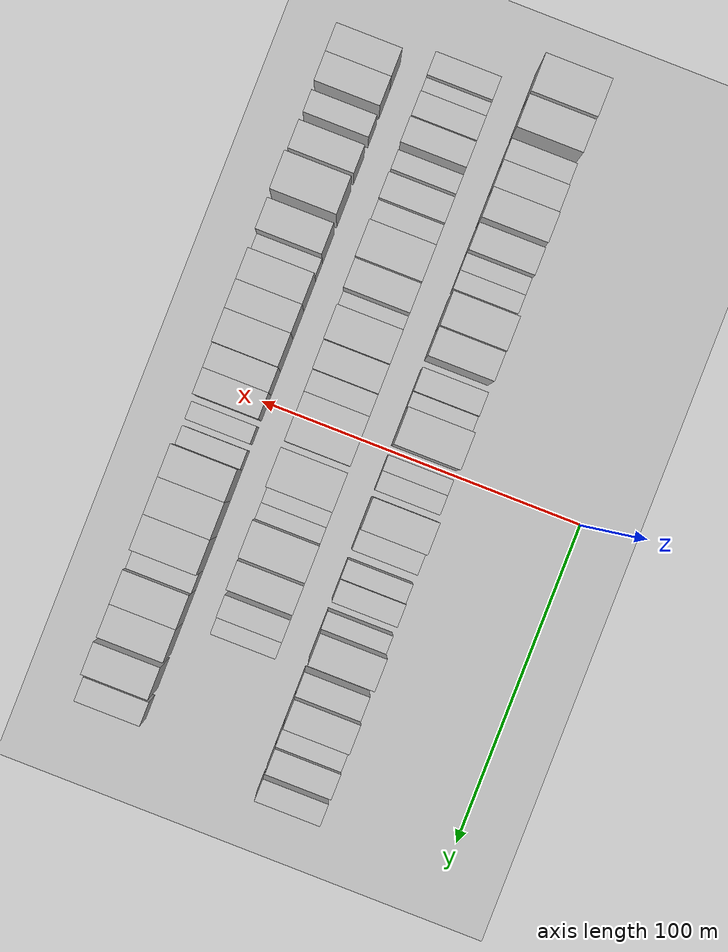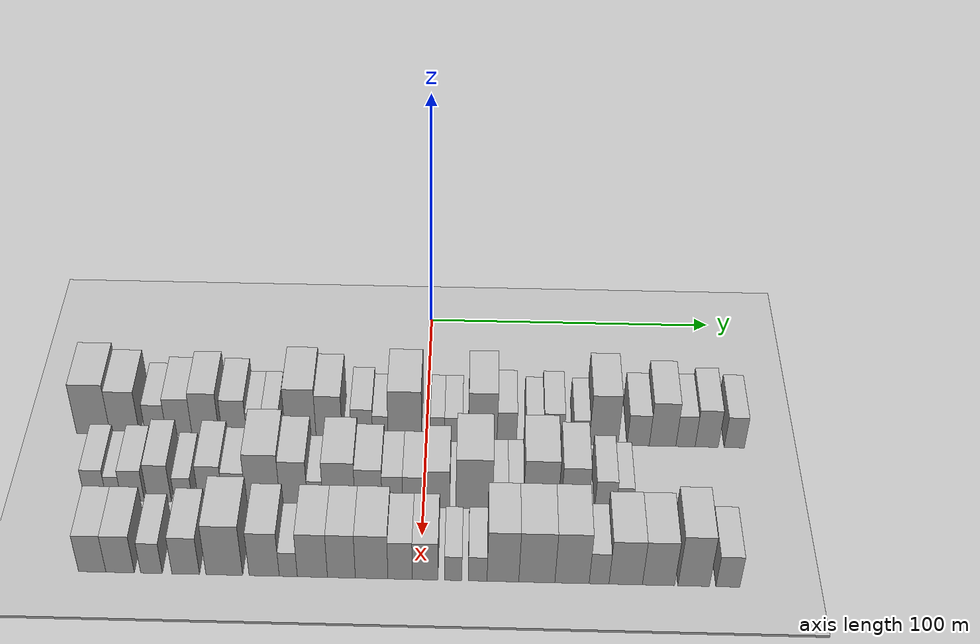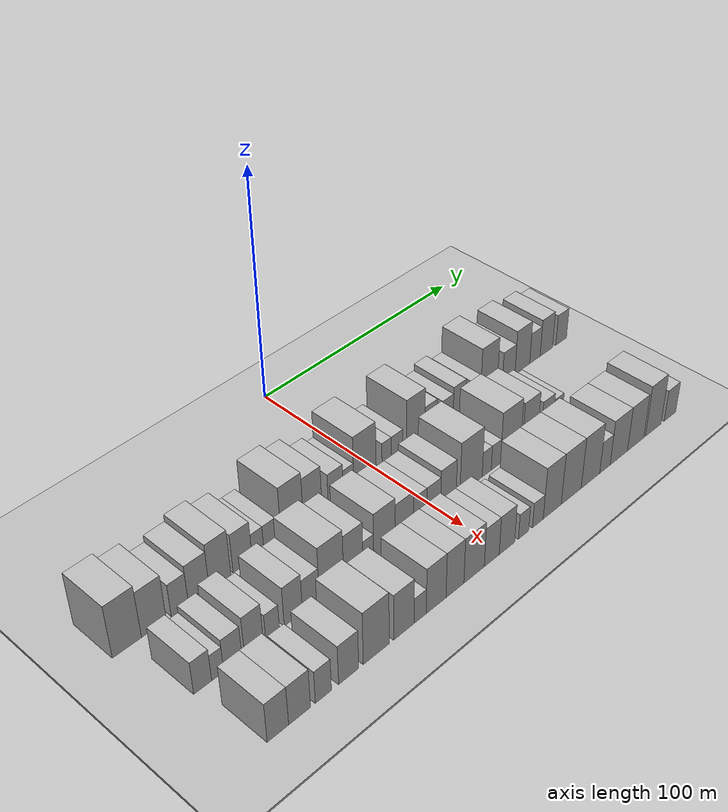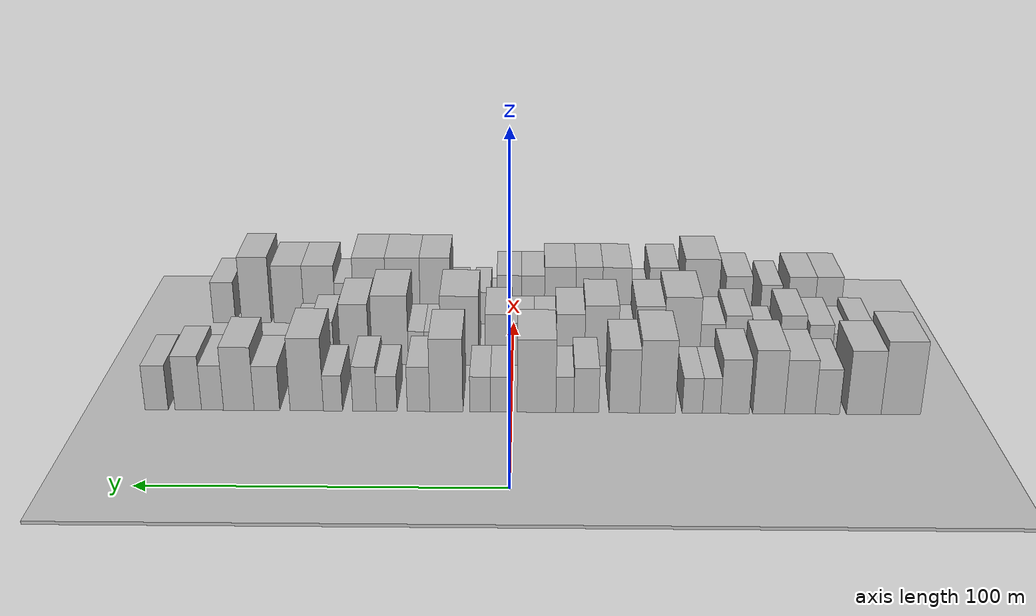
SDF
<sdf version="1.6">
 <world name="default">
  <include><name>ground_plane_1</name><uri>model://HANNAS_ground_plane</uri></include>
  <include>
   <name>ground_plane_2</name>
   <uri>model://HANNAS_ground_plane</uri>
   <pose>100 0 0  0 0 0</pose>
  </include>
  <model name="building_25">
   <static>1</static>
   <pose>50.0000 -112.6428 0 0.000000 0.000000 0.000000</pose>
   <link name="link">
    <pose>0 0 12.00 0 0 0</pose>
    <collision name="collision"><geometry><box><size>20.0000 11.4302 24.0000</size></box></geometry></collision>
    <visual name="visual">
     <cast_shadows>0</cast_shadows>
     <geometry><box><size>20.0000 11.4302 24.0000</size></box></geometry>
     <material>
      <script>
       <uri>model://HANNAS_wall/materials/scripts</uri>
       <uri>model://HANNAS_wall/materials/textures</uri>
       <name>vrc/HANNAS_wall</name>
      </script>
     </material>
    </visual>
   </link>
  </model>
  <model name="building_26">
   <static>1</static>
   <pose>50.0000 -101.9458 0 0.000000 0.000000 0.000000</pose>
   <link name="link">
    <pose>0 0 10.50 0 0 0</pose>
    <collision name="collision"><geometry><box><size>20.0000 9.9638 21.0000</size></box></geometry></collision>
    <visual name="visual">
     <cast_shadows>0</cast_shadows>
     <geometry><box><size>20.0000 9.9638 21.0000</size></box></geometry>
     <material>
      <script>
       <uri>model://HANNAS_wall/materials/scripts</uri>
       <uri>model://HANNAS_wall/materials/textures</uri>
       <name>vrc/HANNAS_wall</name>
      </script>
     </material>
    </visual>
   </link>
  </model>
  <model name="building_27">
   <static>1</static>
   <pose>50.0000 -91.4111 0 0.000000 0.000000 0.000000</pose>
   <link name="link">
    <pose>0 0 7.50 0 0 0</pose>
    <collision name="collision"><geometry><box><size>20.0000 7.1054 15.0000</size></box></geometry></collision>
    <visual name="visual">
     <cast_shadows>0</cast_shadows>
     <geometry><box><size>20.0000 7.1054 15.0000</size></box></geometry>
     <material>
      <script>
       <uri>model://HANNAS_wall/materials/scripts</uri>
       <uri>model://HANNAS_wall/materials/textures</uri>
       <name>vrc/HANNAS_wall</name>
      </script>
     </material>
    </visual>
   </link>
  </model>
  <model name="building_28">
   <static>1</static>
   <pose>50.0000 -83.4727 0 0.000000 0.000000 0.000000</pose>
   <link name="link">
    <pose>0 0 9.00 0 0 0</pose>
    <collision name="collision"><geometry><box><size>20.0000 8.7715 18.0000</size></box></geometry></collision>
    <visual name="visual">
     <cast_shadows>0</cast_shadows>
     <geometry><box><size>20.0000 8.7715 18.0000</size></box></geometry>
     <material>
      <script>
       <uri>model://HANNAS_wall/materials/scripts</uri>
       <uri>model://HANNAS_wall/materials/textures</uri>
       <name>vrc/HANNAS_wall</name>
      </script>
     </material>
    </visual>
   </link>
  </model>
  <model name="building_29">
   <static>1</static>
   <pose>50.0000 -74.4863 0 0.000000 0.000000 0.000000</pose>
   <link name="link">
    <pose>0 0 10.50 0 0 0</pose>
    <collision name="collision"><geometry><box><size>20.0000 9.2012 21.0000</size></box></geometry></collision>
    <visual name="visual">
     <cast_shadows>0</cast_shadows>
     <geometry><box><size>20.0000 9.2012 21.0000</size></box></geometry>
     <material>
      <script>
       <uri>model://HANNAS_wall/materials/scripts</uri>
       <uri>model://HANNAS_wall/materials/textures</uri>
       <name>vrc/HANNAS_wall</name>
      </script>
     </material>
    </visual>
   </link>
  </model>
  <model name="building_30">
   <static>1</static>
   <pose>50.0000 -64.7141 0 0.000000 0.000000 0.000000</pose>
   <link name="link">
    <pose>0 0 9.00 0 0 0</pose>
    <collision name="collision"><geometry><box><size>20.0000 8.3432 18.0000</size></box></geometry></collision>
    <visual name="visual">
     <cast_shadows>0</cast_shadows>
     <geometry><box><size>20.0000 8.3432 18.0000</size></box></geometry>
     <material>
      <script>
       <uri>model://HANNAS_wall/materials/scripts</uri>
       <uri>model://HANNAS_wall/materials/textures</uri>
       <name>vrc/HANNAS_wall</name>
      </script>
     </material>
    </visual>
   </link>
  </model>
  <model name="building_31">
   <static>1</static>
   <pose>50.0000 -57.9060 0 0.000000 0.000000 0.000000</pose>
   <link name="link">
    <pose>0 0 6.00 0 0 0</pose>
    <collision name="collision"><geometry><box><size>20.0000 5.2730 12.0000</size></box></geometry></collision>
    <visual name="visual">
     <cast_shadows>0</cast_shadows>
     <geometry><box><size>20.0000 5.2730 12.0000</size></box></geometry>
     <material>
      <script>
       <uri>model://HANNAS_wall/materials/scripts</uri>
       <uri>model://HANNAS_wall/materials/textures</uri>
       <name>vrc/HANNAS_wall</name>
      </script>
     </material>
    </visual>
   </link>
  </model>
  <model name="building_32">
   <static>1</static>
   <pose>50.0000 -52.3699 0 0.000000 0.000000 0.000000</pose>
   <link name="link">
    <pose>0 0 6.00 0 0 0</pose>
    <collision name="collision"><geometry><box><size>20.0000 5.7993 12.0000</size></box></geometry></collision>
    <visual name="visual">
     <cast_shadows>0</cast_shadows>
     <geometry><box><size>20.0000 5.7993 12.0000</size></box></geometry>
     <material>
      <script>
       <uri>model://HANNAS_wall/materials/scripts</uri>
       <uri>model://HANNAS_wall/materials/textures</uri>
       <name>vrc/HANNAS_wall</name>
      </script>
     </material>
    </visual>
   </link>
  </model>
  <model name="building_33">
   <static>1</static>
   <pose>50.0000 -42.2846 0 0.000000 0.000000 0.000000</pose>
   <link name="link">
    <pose>0 0 12.00 0 0 0</pose>
    <collision name="collision"><geometry><box><size>20.0000 10.3713 24.0000</size></box></geometry></collision>
    <visual name="visual">
     <cast_shadows>0</cast_shadows>
     <geometry><box><size>20.0000 10.3713 24.0000</size></box></geometry>
     <material>
      <script>
       <uri>model://HANNAS_wall/materials/scripts</uri>
       <uri>model://HANNAS_wall/materials/textures</uri>
       <name>vrc/HANNAS_wall</name>
      </script>
     </material>
    </visual>
   </link>
  </model>
  <model name="building_34">
   <static>1</static>
   <pose>50.0000 -32.6914 0 0.000000 0.000000 0.000000</pose>
   <link name="link">
    <pose>0 0 10.50 0 0 0</pose>
    <collision name="collision"><geometry><box><size>20.0000 8.8151 21.0000</size></box></geometry></collision>
    <visual name="visual">
     <cast_shadows>0</cast_shadows>
     <geometry><box><size>20.0000 8.8151 21.0000</size></box></geometry>
     <material>
      <script>
       <uri>model://HANNAS_wall/materials/scripts</uri>
       <uri>model://HANNAS_wall/materials/textures</uri>
       <name>vrc/HANNAS_wall</name>
      </script>
     </material>
    </visual>
   </link>
  </model>
  <model name="building_35">
   <static>1</static>
   <pose>50.0000 -21.6587 0 0.000000 0.000000 0.000000</pose>
   <link name="link">
    <pose>0 0 7.50 0 0 0</pose>
    <collision name="collision"><geometry><box><size>20.0000 7.2503 15.0000</size></box></geometry></collision>
    <visual name="visual">
     <cast_shadows>0</cast_shadows>
     <geometry><box><size>20.0000 7.2503 15.0000</size></box></geometry>
     <material>
      <script>
       <uri>model://HANNAS_wall/materials/scripts</uri>
       <uri>model://HANNAS_wall/materials/textures</uri>
       <name>vrc/HANNAS_wall</name>
      </script>
     </material>
    </visual>
   </link>
  </model>
  <model name="building_36">
   <static>1</static>
   <pose>50.0000 -15.4284 0 0.000000 0.000000 0.000000</pose>
   <link name="link">
    <pose>0 0 6.00 0 0 0</pose>
    <collision name="collision"><geometry><box><size>20.0000 5.2104 12.0000</size></box></geometry></collision>
    <visual name="visual">
     <cast_shadows>0</cast_shadows>
     <geometry><box><size>20.0000 5.2104 12.0000</size></box></geometry>
     <material>
      <script>
       <uri>model://HANNAS_wall/materials/scripts</uri>
       <uri>model://HANNAS_wall/materials/textures</uri>
       <name>vrc/HANNAS_wall</name>
      </script>
     </material>
    </visual>
   </link>
  </model>
  <model name="building_37">
   <static>1</static>
   <pose>50.0000 -7.2156 0 0.000000 0.000000 0.000000</pose>
   <link name="link">
    <pose>0 0 12.00 0 0 0</pose>
    <collision name="collision"><geometry><box><size>20.0000 11.2152 24.0000</size></box></geometry></collision>
    <visual name="visual">
     <cast_shadows>0</cast_shadows>
     <geometry><box><size>20.0000 11.2152 24.0000</size></box></geometry>
     <material>
      <script>
       <uri>model://HANNAS_wall/materials/scripts</uri>
       <uri>model://HANNAS_wall/materials/textures</uri>
       <name>vrc/HANNAS_wall</name>
      </script>
     </material>
    </visual>
   </link>
  </model>
  <model name="building_38">
   <static>1</static>
   <pose>50.0000 3.7937 0 0.000000 0.000000 0.000000</pose>
   <link name="link">
    <pose>0 0 6.00 0 0 0</pose>
    <collision name="collision"><geometry><box><size>20.0000 4.8033 12.0000</size></box></geometry></collision>
    <visual name="visual">
     <cast_shadows>0</cast_shadows>
     <geometry><box><size>20.0000 4.8033 12.0000</size></box></geometry>
     <material>
      <script>
       <uri>model://HANNAS_wall/materials/scripts</uri>
       <uri>model://HANNAS_wall/materials/textures</uri>
       <name>vrc/HANNAS_wall</name>
      </script>
     </material>
    </visual>
   </link>
  </model>
  <model name="building_39">
   <static>1</static>
   <pose>50.0000 9.1888 0 0.000000 0.000000 0.000000</pose>
   <link name="link">
    <pose>0 0 6.00 0 0 0</pose>
    <collision name="collision"><geometry><box><size>20.0000 5.9868 12.0000</size></box></geometry></collision>
    <visual name="visual">
     <cast_shadows>0</cast_shadows>
     <geometry><box><size>20.0000 5.9868 12.0000</size></box></geometry>
     <material>
      <script>
       <uri>model://HANNAS_wall/materials/scripts</uri>
       <uri>model://HANNAS_wall/materials/textures</uri>
       <name>vrc/HANNAS_wall</name>
      </script>
     </material>
    </visual>
   </link>
  </model>
  <model name="building_40">
   <static>1</static>
   <pose>50.0000 18.9999 0 0.000000 0.000000 0.000000</pose>
   <link name="link">
    <pose>0 0 12.00 0 0 0</pose>
    <collision name="collision"><geometry><box><size>20.0000 9.6355 24.0000</size></box></geometry></collision>
    <visual name="visual">
     <cast_shadows>0</cast_shadows>
     <geometry><box><size>20.0000 9.6355 24.0000</size></box></geometry>
     <material>
      <script>
       <uri>model://HANNAS_wall/materials/scripts</uri>
       <uri>model://HANNAS_wall/materials/textures</uri>
       <name>vrc/HANNAS_wall</name>
      </script>
     </material>
    </visual>
   </link>
  </model>
  <model name="building_41">
   <static>1</static>
   <pose>50.0000 27.0947 0 0.000000 0.000000 0.000000</pose>
   <link name="link">
    <pose>0 0 7.50 0 0 0</pose>
    <collision name="collision"><geometry><box><size>20.0000 6.5542 15.0000</size></box></geometry></collision>
    <visual name="visual">
     <cast_shadows>0</cast_shadows>
     <geometry><box><size>20.0000 6.5542 15.0000</size></box></geometry>
     <material>
      <script>
       <uri>model://HANNAS_wall/materials/scripts</uri>
       <uri>model://HANNAS_wall/materials/textures</uri>
       <name>vrc/HANNAS_wall</name>
      </script>
     </material>
    </visual>
   </link>
  </model>
  <model name="building_42">
   <static>1</static>
   <pose>50.0000 36.3470 0 0.000000 0.000000 0.000000</pose>
   <link name="link">
    <pose>0 0 6.00 0 0 0</pose>
    <collision name="collision"><geometry><box><size>20.0000 5.9503 12.0000</size></box></geometry></collision>
    <visual name="visual">
     <cast_shadows>0</cast_shadows>
     <geometry><box><size>20.0000 5.9503 12.0000</size></box></geometry>
     <material>
      <script>
       <uri>model://HANNAS_wall/materials/scripts</uri>
       <uri>model://HANNAS_wall/materials/textures</uri>
       <name>vrc/HANNAS_wall</name>
      </script>
     </material>
    </visual>
   </link>
  </model>
  <model name="building_43">
   <static>1</static>
   <pose>50.0000 42.7750 0 0.000000 0.000000 0.000000</pose>
   <link name="link">
    <pose>0 0 7.50 0 0 0</pose>
    <collision name="collision"><geometry><box><size>20.0000 6.9056 15.0000</size></box></geometry></collision>
    <visual name="visual">
     <cast_shadows>0</cast_shadows>
     <geometry><box><size>20.0000 6.9056 15.0000</size></box></geometry>
     <material>
      <script>
       <uri>model://HANNAS_wall/materials/scripts</uri>
       <uri>model://HANNAS_wall/materials/textures</uri>
       <name>vrc/HANNAS_wall</name>
      </script>
     </material>
    </visual>
   </link>
  </model>
  <model name="building_44">
   <static>1</static>
   <pose>50.0000 51.9969 0 0.000000 0.000000 0.000000</pose>
   <link name="link">
    <pose>0 0 6.00 0 0 0</pose>
    <collision name="collision"><geometry><box><size>20.0000 5.5381 12.0000</size></box></geometry></collision>
    <visual name="visual">
     <cast_shadows>0</cast_shadows>
     <geometry><box><size>20.0000 5.5381 12.0000</size></box></geometry>
     <material>
      <script>
       <uri>model://HANNAS_wall/materials/scripts</uri>
       <uri>model://HANNAS_wall/materials/textures</uri>
       <name>vrc/HANNAS_wall</name>
      </script>
     </material>
    </visual>
   </link>
  </model>
  <model name="building_45">
   <static>1</static>
   <pose>50.0000 59.6336 0 0.000000 0.000000 0.000000</pose>
   <link name="link">
    <pose>0 0 12.00 0 0 0</pose>
    <collision name="collision"><geometry><box><size>20.0000 9.7353 24.0000</size></box></geometry></collision>
    <visual name="visual">
     <cast_shadows>0</cast_shadows>
     <geometry><box><size>20.0000 9.7353 24.0000</size></box></geometry>
     <material>
      <script>
       <uri>model://HANNAS_wall/materials/scripts</uri>
       <uri>model://HANNAS_wall/materials/textures</uri>
       <name>vrc/HANNAS_wall</name>
      </script>
     </material>
    </visual>
   </link>
  </model>
  <model name="building_46">
   <static>1</static>
   <pose>50.0000 71.2349 0 0.000000 0.000000 0.000000</pose>
   <link name="link">
    <pose>0 0 7.50 0 0 0</pose>
    <collision name="collision"><geometry><box><size>20.0000 7.4674 15.0000</size></box></geometry></collision>
    <visual name="visual">
     <cast_shadows>0</cast_shadows>
     <geometry><box><size>20.0000 7.4674 15.0000</size></box></geometry>
     <material>
      <script>
       <uri>model://HANNAS_wall/materials/scripts</uri>
       <uri>model://HANNAS_wall/materials/textures</uri>
       <name>vrc/HANNAS_wall</name>
      </script>
     </material>
    </visual>
   </link>
  </model>
  <model name="building_47">
   <static>1</static>
   <pose>50.0000 79.4312 0 0.000000 0.000000 0.000000</pose>
   <link name="link">
    <pose>0 0 10.50 0 0 0</pose>
    <collision name="collision"><geometry><box><size>20.0000 8.9253 21.0000</size></box></geometry></collision>
    <visual name="visual">
     <cast_shadows>0</cast_shadows>
     <geometry><box><size>20.0000 8.9253 21.0000</size></box></geometry>
     <material>
      <script>
       <uri>model://HANNAS_wall/materials/scripts</uri>
       <uri>model://HANNAS_wall/materials/textures</uri>
       <name>vrc/HANNAS_wall</name>
      </script>
     </material>
    </visual>
   </link>
  </model>
  <model name="building_48">
   <static>1</static>
   <pose>50.0000 87.1075 0 0.000000 0.000000 0.000000</pose>
   <link name="link">
    <pose>0 0 7.50 0 0 0</pose>
    <collision name="collision"><geometry><box><size>20.0000 6.4273 15.0000</size></box></geometry></collision>
    <visual name="visual">
     <cast_shadows>0</cast_shadows>
     <geometry><box><size>20.0000 6.4273 15.0000</size></box></geometry>
     <material>
      <script>
       <uri>model://HANNAS_wall/materials/scripts</uri>
       <uri>model://HANNAS_wall/materials/textures</uri>
       <name>vrc/HANNAS_wall</name>
      </script>
     </material>
    </visual>
   </link>
  </model>
  <model name="building_49">
   <static>1</static>
   <pose>50.0000 94.1932 0 0.000000 0.000000 0.000000</pose>
   <link name="link">
    <pose>0 0 9.00 0 0 0</pose>
    <collision name="collision"><geometry><box><size>20.0000 7.7441 18.0000</size></box></geometry></collision>
    <visual name="visual">
     <cast_shadows>0</cast_shadows>
     <geometry><box><size>20.0000 7.7441 18.0000</size></box></geometry>
     <material>
      <script>
       <uri>model://HANNAS_wall/materials/scripts</uri>
       <uri>model://HANNAS_wall/materials/textures</uri>
       <name>vrc/HANNAS_wall</name>
      </script>
     </material>
    </visual>
   </link>
  </model>
  <model name="building_50">
   <static>1</static>
   <pose>50.0000 103.4503 0 0.000000 0.000000 0.000000</pose>
   <link name="link">
    <pose>0 0 7.50 0 0 0</pose>
    <collision name="collision"><geometry><box><size>20.0000 6.7701 15.0000</size></box></geometry></collision>
    <visual name="visual">
     <cast_shadows>0</cast_shadows>
     <geometry><box><size>20.0000 6.7701 15.0000</size></box></geometry>
     <material>
      <script>
       <uri>model://HANNAS_wall/materials/scripts</uri>
       <uri>model://HANNAS_wall/materials/textures</uri>
       <name>vrc/HANNAS_wall</name>
      </script>
     </material>
    </visual>
   </link>
  </model>
  <model name="building_99">
   <static>1</static>
   <pose>79.0000 -106.5419 0 0.000000 0.000000 0.000000</pose>
   <link name="link">
    <pose>0 0 7.50 0 0 0</pose>
    <collision name="collision"><geometry><box><size>20.0000 7.1112 15.0000</size></box></geometry></collision>
    <visual name="visual">
     <cast_shadows>0</cast_shadows>
     <geometry><box><size>20.0000 7.1112 15.0000</size></box></geometry>
     <material>
      <script>
       <uri>model://HANNAS_wall/materials/scripts</uri>
       <uri>model://HANNAS_wall/materials/textures</uri>
       <name>vrc/HANNAS_wall</name>
      </script>
     </material>
    </visual>
   </link>
  </model>
  <model name="building_100">
   <static>1</static>
   <pose>79.0000 -100.5685 0 0.000000 0.000000 0.000000</pose>
   <link name="link">
    <pose>0 0 6.00 0 0 0</pose>
    <collision name="collision"><geometry><box><size>20.0000 4.8355 12.0000</size></box></geometry></collision>
    <visual name="visual">
     <cast_shadows>0</cast_shadows>
     <geometry><box><size>20.0000 4.8355 12.0000</size></box></geometry>
     <material>
      <script>
       <uri>model://HANNAS_wall/materials/scripts</uri>
       <uri>model://HANNAS_wall/materials/textures</uri>
       <name>vrc/HANNAS_wall</name>
      </script>
     </material>
    </visual>
   </link>
  </model>
  <model name="building_101">
   <static>1</static>
   <pose>79.0000 -94.4095 0 0.000000 0.000000 0.000000</pose>
   <link name="link">
    <pose>0 0 7.50 0 0 0</pose>
    <collision name="collision"><geometry><box><size>20.0000 7.4825 15.0000</size></box></geometry></collision>
    <visual name="visual">
     <cast_shadows>0</cast_shadows>
     <geometry><box><size>20.0000 7.4825 15.0000</size></box></geometry>
     <material>
      <script>
       <uri>model://HANNAS_wall/materials/scripts</uri>
       <uri>model://HANNAS_wall/materials/textures</uri>
       <name>vrc/HANNAS_wall</name>
      </script>
     </material>
    </visual>
   </link>
  </model>
  <model name="building_102">
   <static>1</static>
   <pose>79.0000 -85.7606 0 0.000000 0.000000 0.000000</pose>
   <link name="link">
    <pose>0 0 9.00 0 0 0</pose>
    <collision name="collision"><geometry><box><size>20.0000 7.8154 18.0000</size></box></geometry></collision>
    <visual name="visual">
     <cast_shadows>0</cast_shadows>
     <geometry><box><size>20.0000 7.8154 18.0000</size></box></geometry>
     <material>
      <script>
       <uri>model://HANNAS_wall/materials/scripts</uri>
       <uri>model://HANNAS_wall/materials/textures</uri>
       <name>vrc/HANNAS_wall</name>
      </script>
     </material>
    </visual>
   </link>
  </model>
  <model name="building_103">
   <static>1</static>
   <pose>79.0000 -77.9012 0 0.000000 0.000000 0.000000</pose>
   <link name="link">
    <pose>0 0 6.00 0 0 0</pose>
    <collision name="collision"><geometry><box><size>20.0000 5.9033 12.0000</size></box></geometry></collision>
    <visual name="visual">
     <cast_shadows>0</cast_shadows>
     <geometry><box><size>20.0000 5.9033 12.0000</size></box></geometry>
     <material>
      <script>
       <uri>model://HANNAS_wall/materials/scripts</uri>
       <uri>model://HANNAS_wall/materials/textures</uri>
       <name>vrc/HANNAS_wall</name>
      </script>
     </material>
    </visual>
   </link>
  </model>
  <model name="building_104">
   <static>1</static>
   <pose>79.0000 -68.9861 0 0.000000 0.000000 0.000000</pose>
   <link name="link">
    <pose>0 0 9.00 0 0 0</pose>
    <collision name="collision"><geometry><box><size>20.0000 7.9268 18.0000</size></box></geometry></collision>
    <visual name="visual">
     <cast_shadows>0</cast_shadows>
     <geometry><box><size>20.0000 7.9268 18.0000</size></box></geometry>
     <material>
      <script>
       <uri>model://HANNAS_wall/materials/scripts</uri>
       <uri>model://HANNAS_wall/materials/textures</uri>
       <name>vrc/HANNAS_wall</name>
      </script>
     </material>
    </visual>
   </link>
  </model>
  <model name="building_105">
   <static>1</static>
   <pose>79.0000 -61.2761 0 0.000000 0.000000 0.000000</pose>
   <link name="link">
    <pose>0 0 7.50 0 0 0</pose>
    <collision name="collision"><geometry><box><size>20.0000 7.4932 15.0000</size></box></geometry></collision>
    <visual name="visual">
     <cast_shadows>0</cast_shadows>
     <geometry><box><size>20.0000 7.4932 15.0000</size></box></geometry>
     <material>
      <script>
       <uri>model://HANNAS_wall/materials/scripts</uri>
       <uri>model://HANNAS_wall/materials/textures</uri>
       <name>vrc/HANNAS_wall</name>
      </script>
     </material>
    </visual>
   </link>
  </model>
  <model name="building_106">
   <static>1</static>
   <pose>79.0000 -51.9977 0 0.000000 0.000000 0.000000</pose>
   <link name="link">
    <pose>0 0 12.00 0 0 0</pose>
    <collision name="collision"><geometry><box><size>20.0000 11.0637 24.0000</size></box></geometry></collision>
    <visual name="visual">
     <cast_shadows>0</cast_shadows>
     <geometry><box><size>20.0000 11.0637 24.0000</size></box></geometry>
     <material>
      <script>
       <uri>model://HANNAS_wall/materials/scripts</uri>
       <uri>model://HANNAS_wall/materials/textures</uri>
       <name>vrc/HANNAS_wall</name>
      </script>
     </material>
    </visual>
   </link>
  </model>
  <model name="building_107">
   <static>1</static>
   <pose>79.0000 -41.9970 0 0.000000 0.000000 0.000000</pose>
   <link name="link">
    <pose>0 0 10.50 0 0 0</pose>
    <collision name="collision"><geometry><box><size>20.0000 8.9377 21.0000</size></box></geometry></collision>
    <visual name="visual">
     <cast_shadows>0</cast_shadows>
     <geometry><box><size>20.0000 8.9377 21.0000</size></box></geometry>
     <material>
      <script>
       <uri>model://HANNAS_wall/materials/scripts</uri>
       <uri>model://HANNAS_wall/materials/textures</uri>
       <name>vrc/HANNAS_wall</name>
      </script>
     </material>
    </visual>
   </link>
  </model>
  <model name="building_108">
   <static>1</static>
   <pose>79.0000 -35.0214 0 0.000000 0.000000 0.000000</pose>
   <link name="link">
    <pose>0 0 6.00 0 0 0</pose>
    <collision name="collision"><geometry><box><size>20.0000 5.0135 12.0000</size></box></geometry></collision>
    <visual name="visual">
     <cast_shadows>0</cast_shadows>
     <geometry><box><size>20.0000 5.0135 12.0000</size></box></geometry>
     <material>
      <script>
       <uri>model://HANNAS_wall/materials/scripts</uri>
       <uri>model://HANNAS_wall/materials/textures</uri>
       <name>vrc/HANNAS_wall</name>
      </script>
     </material>
    </visual>
   </link>
  </model>
  <model name="building_109">
   <static>1</static>
   <pose>79.0000 -27.3393 0 0.000000 0.000000 0.000000</pose>
   <link name="link">
    <pose>0 0 10.50 0 0 0</pose>
    <collision name="collision"><geometry><box><size>20.0000 10.3507 21.0000</size></box></geometry></collision>
    <visual name="visual">
     <cast_shadows>0</cast_shadows>
     <geometry><box><size>20.0000 10.3507 21.0000</size></box></geometry>
     <material>
      <script>
       <uri>model://HANNAS_wall/materials/scripts</uri>
       <uri>model://HANNAS_wall/materials/textures</uri>
       <name>vrc/HANNAS_wall</name>
      </script>
     </material>
    </visual>
   </link>
  </model>
  <model name="building_110">
   <static>1</static>
   <pose>79.0000 -17.7648 0 0.000000 0.000000 0.000000</pose>
   <link name="link">
    <pose>0 0 9.00 0 0 0</pose>
    <collision name="collision"><geometry><box><size>20.0000 8.7983 18.0000</size></box></geometry></collision>
    <visual name="visual">
     <cast_shadows>0</cast_shadows>
     <geometry><box><size>20.0000 8.7983 18.0000</size></box></geometry>
     <material>
      <script>
       <uri>model://HANNAS_wall/materials/scripts</uri>
       <uri>model://HANNAS_wall/materials/textures</uri>
       <name>vrc/HANNAS_wall</name>
      </script>
     </material>
    </visual>
   </link>
  </model>
  <model name="building_111">
   <static>1</static>
   <pose>79.0000 -10.0273 0 0.000000 0.000000 0.000000</pose>
   <link name="link">
    <pose>0 0 7.50 0 0 0</pose>
    <collision name="collision"><geometry><box><size>20.0000 6.6767 15.0000</size></box></geometry></collision>
    <visual name="visual">
     <cast_shadows>0</cast_shadows>
     <geometry><box><size>20.0000 6.6767 15.0000</size></box></geometry>
     <material>
      <script>
       <uri>model://HANNAS_wall/materials/scripts</uri>
       <uri>model://HANNAS_wall/materials/textures</uri>
       <name>vrc/HANNAS_wall</name>
      </script>
     </material>
    </visual>
   </link>
  </model>
  <model name="building_112">
   <static>1</static>
   <pose>79.0000 -3.1164 0 0.000000 0.000000 0.000000</pose>
   <link name="link">
    <pose>0 0 7.50 0 0 0</pose>
    <collision name="collision"><geometry><box><size>20.0000 7.1452 15.0000</size></box></geometry></collision>
    <visual name="visual">
     <cast_shadows>0</cast_shadows>
     <geometry><box><size>20.0000 7.1452 15.0000</size></box></geometry>
     <material>
      <script>
       <uri>model://HANNAS_wall/materials/scripts</uri>
       <uri>model://HANNAS_wall/materials/textures</uri>
       <name>vrc/HANNAS_wall</name>
      </script>
     </material>
    </visual>
   </link>
  </model>
  <model name="building_113">
   <static>1</static>
   <pose>79.0000 4.4821 0 0.000000 0.000000 0.000000</pose>
   <link name="link">
    <pose>0 0 9.00 0 0 0</pose>
    <collision name="collision"><geometry><box><size>20.0000 8.0517 18.0000</size></box></geometry></collision>
    <visual name="visual">
     <cast_shadows>0</cast_shadows>
     <geometry><box><size>20.0000 8.0517 18.0000</size></box></geometry>
     <material>
      <script>
       <uri>model://HANNAS_wall/materials/scripts</uri>
       <uri>model://HANNAS_wall/materials/textures</uri>
       <name>vrc/HANNAS_wall</name>
      </script>
     </material>
    </visual>
   </link>
  </model>
  <model name="building_114">
   <static>1</static>
   <pose>79.0000 16.4042 0 0.000000 0.000000 0.000000</pose>
   <link name="link">
    <pose>0 0 12.00 0 0 0</pose>
    <collision name="collision"><geometry><box><size>20.0000 11.7925 24.0000</size></box></geometry></collision>
    <visual name="visual">
     <cast_shadows>0</cast_shadows>
     <geometry><box><size>20.0000 11.7925 24.0000</size></box></geometry>
     <material>
      <script>
       <uri>model://HANNAS_wall/materials/scripts</uri>
       <uri>model://HANNAS_wall/materials/textures</uri>
       <name>vrc/HANNAS_wall</name>
      </script>
     </material>
    </visual>
   </link>
  </model>
  <model name="building_115">
   <static>1</static>
   <pose>79.0000 24.7798 0 0.000000 0.000000 0.000000</pose>
   <link name="link">
    <pose>0 0 6.00 0 0 0</pose>
    <collision name="collision"><geometry><box><size>20.0000 4.9587 12.0000</size></box></geometry></collision>
    <visual name="visual">
     <cast_shadows>0</cast_shadows>
     <geometry><box><size>20.0000 4.9587 12.0000</size></box></geometry>
     <material>
      <script>
       <uri>model://HANNAS_wall/materials/scripts</uri>
       <uri>model://HANNAS_wall/materials/textures</uri>
       <name>vrc/HANNAS_wall</name>
      </script>
     </material>
    </visual>
   </link>
  </model>
  <model name="building_116">
   <static>1</static>
   <pose>79.0000 29.7670 0 0.000000 0.000000 0.000000</pose>
   <link name="link">
    <pose>0 0 6.00 0 0 0</pose>
    <collision name="collision"><geometry><box><size>20.0000 5.0158 12.0000</size></box></geometry></collision>
    <visual name="visual">
     <cast_shadows>0</cast_shadows>
     <geometry><box><size>20.0000 5.0158 12.0000</size></box></geometry>
     <material>
      <script>
       <uri>model://HANNAS_wall/materials/scripts</uri>
       <uri>model://HANNAS_wall/materials/textures</uri>
       <name>vrc/HANNAS_wall</name>
      </script>
     </material>
    </visual>
   </link>
  </model>
  <model name="building_117">
   <static>1</static>
   <pose>79.0000 37.8632 0 0.000000 0.000000 0.000000</pose>
   <link name="link">
    <pose>0 0 12.00 0 0 0</pose>
    <collision name="collision"><geometry><box><size>20.0000 11.1765 24.0000</size></box></geometry></collision>
    <visual name="visual">
     <cast_shadows>0</cast_shadows>
     <geometry><box><size>20.0000 11.1765 24.0000</size></box></geometry>
     <material>
      <script>
       <uri>model://HANNAS_wall/materials/scripts</uri>
       <uri>model://HANNAS_wall/materials/textures</uri>
       <name>vrc/HANNAS_wall</name>
      </script>
     </material>
    </visual>
   </link>
  </model>
  <model name="building_118">
   <static>1</static>
   <pose>79.0000 48.8683 0 0.000000 0.000000 0.000000</pose>
   <link name="link">
    <pose>0 0 10.50 0 0 0</pose>
    <collision name="collision"><geometry><box><size>20.0000 8.8338 21.0000</size></box></geometry></collision>
    <visual name="visual">
     <cast_shadows>0</cast_shadows>
     <geometry><box><size>20.0000 8.8338 21.0000</size></box></geometry>
     <material>
      <script>
       <uri>model://HANNAS_wall/materials/scripts</uri>
       <uri>model://HANNAS_wall/materials/textures</uri>
       <name>vrc/HANNAS_wall</name>
      </script>
     </material>
    </visual>
   </link>
  </model>
  <model name="building_119">
   <static>1</static>
   <pose>79.0000 58.7326 0 0.000000 0.000000 0.000000</pose>
   <link name="link">
    <pose>0 0 7.50 0 0 0</pose>
    <collision name="collision"><geometry><box><size>20.0000 6.8946 15.0000</size></box></geometry></collision>
    <visual name="visual">
     <cast_shadows>0</cast_shadows>
     <geometry><box><size>20.0000 6.8946 15.0000</size></box></geometry>
     <material>
      <script>
       <uri>model://HANNAS_wall/materials/scripts</uri>
       <uri>model://HANNAS_wall/materials/textures</uri>
       <name>vrc/HANNAS_wall</name>
      </script>
     </material>
    </visual>
   </link>
  </model>
  <model name="building_120">
   <static>1</static>
   <pose>79.0000 64.8728 0 0.000000 0.000000 0.000000</pose>
   <link name="link">
    <pose>0 0 6.00 0 0 0</pose>
    <collision name="collision"><geometry><box><size>20.0000 5.3857 12.0000</size></box></geometry></collision>
    <visual name="visual">
     <cast_shadows>0</cast_shadows>
     <geometry><box><size>20.0000 5.3857 12.0000</size></box></geometry>
     <material>
      <script>
       <uri>model://HANNAS_wall/materials/scripts</uri>
       <uri>model://HANNAS_wall/materials/textures</uri>
       <name>vrc/HANNAS_wall</name>
      </script>
     </material>
    </visual>
   </link>
  </model>
  <model name="building_165">
   <static>1</static>
   <pose>108.0000 -102.3940 0 0.000000 0.000000 0.000000</pose>
   <link name="link">
    <pose>0 0 9.00 0 0 0</pose>
    <collision name="collision"><geometry><box><size>20.0000 8.5730 18.0000</size></box></geometry></collision>
    <visual name="visual">
     <cast_shadows>0</cast_shadows>
     <geometry><box><size>20.0000 8.5730 18.0000</size></box></geometry>
     <material>
      <script>
       <uri>model://HANNAS_wall/materials/scripts</uri>
       <uri>model://HANNAS_wall/materials/textures</uri>
       <name>vrc/HANNAS_wall</name>
      </script>
     </material>
    </visual>
   </link>
  </model>
  <model name="building_166">
   <static>1</static>
   <pose>108.0000 -93.6521 0 0.000000 0.000000 0.000000</pose>
   <link name="link">
    <pose>0 0 9.00 0 0 0</pose>
    <collision name="collision"><geometry><box><size>20.0000 8.9109 18.0000</size></box></geometry></collision>
    <visual name="visual">
     <cast_shadows>0</cast_shadows>
     <geometry><box><size>20.0000 8.9109 18.0000</size></box></geometry>
     <material>
      <script>
       <uri>model://HANNAS_wall/materials/scripts</uri>
       <uri>model://HANNAS_wall/materials/textures</uri>
       <name>vrc/HANNAS_wall</name>
      </script>
     </material>
    </visual>
   </link>
  </model>
  <model name="building_167">
   <static>1</static>
   <pose>108.0000 -83.8133 0 0.000000 0.000000 0.000000</pose>
   <link name="link">
    <pose>0 0 7.50 0 0 0</pose>
    <collision name="collision"><geometry><box><size>20.0000 6.7667 15.0000</size></box></geometry></collision>
    <visual name="visual">
     <cast_shadows>0</cast_shadows>
     <geometry><box><size>20.0000 6.7667 15.0000</size></box></geometry>
     <material>
      <script>
       <uri>model://HANNAS_wall/materials/scripts</uri>
       <uri>model://HANNAS_wall/materials/textures</uri>
       <name>vrc/HANNAS_wall</name>
      </script>
     </material>
    </visual>
   </link>
  </model>
  <model name="building_168">
   <static>1</static>
   <pose>108.0000 -73.1065 0 0.000000 0.000000 0.000000</pose>
   <link name="link">
    <pose>0 0 9.00 0 0 0</pose>
    <collision name="collision"><geometry><box><size>20.0000 8.6468 18.0000</size></box></geometry></collision>
    <visual name="visual">
     <cast_shadows>0</cast_shadows>
     <geometry><box><size>20.0000 8.6468 18.0000</size></box></geometry>
     <material>
      <script>
       <uri>model://HANNAS_wall/materials/scripts</uri>
       <uri>model://HANNAS_wall/materials/textures</uri>
       <name>vrc/HANNAS_wall</name>
      </script>
     </material>
    </visual>
   </link>
  </model>
  <model name="building_169">
   <static>1</static>
   <pose>108.0000 -61.0427 0 0.000000 0.000000 0.000000</pose>
   <link name="link">
    <pose>0 0 12.00 0 0 0</pose>
    <collision name="collision"><geometry><box><size>20.0000 11.4808 24.0000</size></box></geometry></collision>
    <visual name="visual">
     <cast_shadows>0</cast_shadows>
     <geometry><box><size>20.0000 11.4808 24.0000</size></box></geometry>
     <material>
      <script>
       <uri>model://HANNAS_wall/materials/scripts</uri>
       <uri>model://HANNAS_wall/materials/textures</uri>
       <name>vrc/HANNAS_wall</name>
      </script>
     </material>
    </visual>
   </link>
  </model>
  <model name="building_170">
   <static>1</static>
   <pose>108.0000 -48.6003 0 0.000000 0.000000 0.000000</pose>
   <link name="link">
    <pose>0 0 10.50 0 0 0</pose>
    <collision name="collision"><geometry><box><size>20.0000 9.4039 21.0000</size></box></geometry></collision>
    <visual name="visual">
     <cast_shadows>0</cast_shadows>
     <geometry><box><size>20.0000 9.4039 21.0000</size></box></geometry>
     <material>
      <script>
       <uri>model://HANNAS_wall/materials/scripts</uri>
       <uri>model://HANNAS_wall/materials/textures</uri>
       <name>vrc/HANNAS_wall</name>
      </script>
     </material>
    </visual>
   </link>
  </model>
  <model name="building_171">
   <static>1</static>
   <pose>108.0000 -41.0808 0 0.000000 0.000000 0.000000</pose>
   <link name="link">
    <pose>0 0 6.00 0 0 0</pose>
    <collision name="collision"><geometry><box><size>20.0000 5.6353 12.0000</size></box></geometry></collision>
    <visual name="visual">
     <cast_shadows>0</cast_shadows>
     <geometry><box><size>20.0000 5.6353 12.0000</size></box></geometry>
     <material>
      <script>
       <uri>model://HANNAS_wall/materials/scripts</uri>
       <uri>model://HANNAS_wall/materials/textures</uri>
       <name>vrc/HANNAS_wall</name>
      </script>
     </material>
    </visual>
   </link>
  </model>
  <model name="building_172">
   <static>1</static>
   <pose>108.0000 -33.5656 0 0.000000 0.000000 0.000000</pose>
   <link name="link">
    <pose>0 0 10.50 0 0 0</pose>
    <collision name="collision"><geometry><box><size>20.0000 9.3950 21.0000</size></box></geometry></collision>
    <visual name="visual">
     <cast_shadows>0</cast_shadows>
     <geometry><box><size>20.0000 9.3950 21.0000</size></box></geometry>
     <material>
      <script>
       <uri>model://HANNAS_wall/materials/scripts</uri>
       <uri>model://HANNAS_wall/materials/textures</uri>
       <name>vrc/HANNAS_wall</name>
      </script>
     </material>
    </visual>
   </link>
  </model>
  <model name="building_173">
   <static>1</static>
   <pose>108.0000 -24.5254 0 0.000000 0.000000 0.000000</pose>
   <link name="link">
    <pose>0 0 10.50 0 0 0</pose>
    <collision name="collision"><geometry><box><size>20.0000 8.6856 21.0000</size></box></geometry></collision>
    <visual name="visual">
     <cast_shadows>0</cast_shadows>
     <geometry><box><size>20.0000 8.6856 21.0000</size></box></geometry>
     <material>
      <script>
       <uri>model://HANNAS_wall/materials/scripts</uri>
       <uri>model://HANNAS_wall/materials/textures</uri>
       <name>vrc/HANNAS_wall</name>
      </script>
     </material>
    </visual>
   </link>
  </model>
  <model name="building_174">
   <static>1</static>
   <pose>108.0000 -15.1174 0 0.000000 0.000000 0.000000</pose>
   <link name="link">
    <pose>0 0 10.50 0 0 0</pose>
    <collision name="collision"><geometry><box><size>20.0000 10.1303 21.0000</size></box></geometry></collision>
    <visual name="visual">
     <cast_shadows>0</cast_shadows>
     <geometry><box><size>20.0000 10.1303 21.0000</size></box></geometry>
     <material>
      <script>
       <uri>model://HANNAS_wall/materials/scripts</uri>
       <uri>model://HANNAS_wall/materials/textures</uri>
       <name>vrc/HANNAS_wall</name>
      </script>
     </material>
    </visual>
   </link>
  </model>
  <model name="building_175">
   <static>1</static>
   <pose>108.0000 -6.2686 0 0.000000 0.000000 0.000000</pose>
   <link name="link">
    <pose>0 0 9.00 0 0 0</pose>
    <collision name="collision"><geometry><box><size>20.0000 7.5674 18.0000</size></box></geometry></collision>
    <visual name="visual">
     <cast_shadows>0</cast_shadows>
     <geometry><box><size>20.0000 7.5674 18.0000</size></box></geometry>
     <material>
      <script>
       <uri>model://HANNAS_wall/materials/scripts</uri>
       <uri>model://HANNAS_wall/materials/textures</uri>
       <name>vrc/HANNAS_wall</name>
      </script>
     </material>
    </visual>
   </link>
  </model>
  <model name="building_176">
   <static>1</static>
   <pose>108.0000 1.5076 0 0.000000 0.000000 0.000000</pose>
   <link name="link">
    <pose>0 0 9.00 0 0 0</pose>
    <collision name="collision"><geometry><box><size>20.0000 7.9849 18.0000</size></box></geometry></collision>
    <visual name="visual">
     <cast_shadows>0</cast_shadows>
     <geometry><box><size>20.0000 7.9849 18.0000</size></box></geometry>
     <material>
      <script>
       <uri>model://HANNAS_wall/materials/scripts</uri>
       <uri>model://HANNAS_wall/materials/textures</uri>
       <name>vrc/HANNAS_wall</name>
      </script>
     </material>
    </visual>
   </link>
  </model>
  <model name="building_177">
   <static>1</static>
   <pose>108.0000 10.1956 0 0.000000 0.000000 0.000000</pose>
   <link name="link">
    <pose>0 0 6.00 0 0 0</pose>
    <collision name="collision"><geometry><box><size>20.0000 5.3912 12.0000</size></box></geometry></collision>
    <visual name="visual">
     <cast_shadows>0</cast_shadows>
     <geometry><box><size>20.0000 5.3912 12.0000</size></box></geometry>
     <material>
      <script>
       <uri>model://HANNAS_wall/materials/scripts</uri>
       <uri>model://HANNAS_wall/materials/textures</uri>
       <name>vrc/HANNAS_wall</name>
      </script>
     </material>
    </visual>
   </link>
  </model>
  <model name="building_178">
   <static>1</static>
   <pose>108.0000 17.8017 0 0.000000 0.000000 0.000000</pose>
   <link name="link">
    <pose>0 0 6.00 0 0 0</pose>
    <collision name="collision"><geometry><box><size>20.0000 5.8209 12.0000</size></box></geometry></collision>
    <visual name="visual">
     <cast_shadows>0</cast_shadows>
     <geometry><box><size>20.0000 5.8209 12.0000</size></box></geometry>
     <material>
      <script>
       <uri>model://HANNAS_wall/materials/scripts</uri>
       <uri>model://HANNAS_wall/materials/textures</uri>
       <name>vrc/HANNAS_wall</name>
      </script>
     </material>
    </visual>
   </link>
  </model>
  <model name="building_179">
   <static>1</static>
   <pose>108.0000 25.6448 0 0.000000 0.000000 0.000000</pose>
   <link name="link">
    <pose>0 0 12.00 0 0 0</pose>
    <collision name="collision"><geometry><box><size>20.0000 9.8652 24.0000</size></box></geometry></collision>
    <visual name="visual">
     <cast_shadows>0</cast_shadows>
     <geometry><box><size>20.0000 9.8652 24.0000</size></box></geometry>
     <material>
      <script>
       <uri>model://HANNAS_wall/materials/scripts</uri>
       <uri>model://HANNAS_wall/materials/textures</uri>
       <name>vrc/HANNAS_wall</name>
      </script>
     </material>
    </visual>
   </link>
  </model>
  <model name="building_180">
   <static>1</static>
   <pose>108.0000 36.1679 0 0.000000 0.000000 0.000000</pose>
   <link name="link">
    <pose>0 0 12.00 0 0 0</pose>
    <collision name="collision"><geometry><box><size>20.0000 11.1810 24.0000</size></box></geometry></collision>
    <visual name="visual">
     <cast_shadows>0</cast_shadows>
     <geometry><box><size>20.0000 11.1810 24.0000</size></box></geometry>
     <material>
      <script>
       <uri>model://HANNAS_wall/materials/scripts</uri>
       <uri>model://HANNAS_wall/materials/textures</uri>
       <name>vrc/HANNAS_wall</name>
      </script>
     </material>
    </visual>
   </link>
  </model>
  <model name="building_181">
   <static>1</static>
   <pose>108.0000 47.0656 0 0.000000 0.000000 0.000000</pose>
   <link name="link">
    <pose>0 0 12.00 0 0 0</pose>
    <collision name="collision"><geometry><box><size>20.0000 10.6145 24.0000</size></box></geometry></collision>
    <visual name="visual">
     <cast_shadows>0</cast_shadows>
     <geometry><box><size>20.0000 10.6145 24.0000</size></box></geometry>
     <material>
      <script>
       <uri>model://HANNAS_wall/materials/scripts</uri>
       <uri>model://HANNAS_wall/materials/textures</uri>
       <name>vrc/HANNAS_wall</name>
      </script>
     </material>
    </visual>
   </link>
  </model>
  <model name="building_182">
   <static>1</static>
   <pose>108.0000 55.4422 0 0.000000 0.000000 0.000000</pose>
   <link name="link">
    <pose>0 0 7.50 0 0 0</pose>
    <collision name="collision"><geometry><box><size>20.0000 6.1387 15.0000</size></box></geometry></collision>
    <visual name="visual">
     <cast_shadows>0</cast_shadows>
     <geometry><box><size>20.0000 6.1387 15.0000</size></box></geometry>
     <material>
      <script>
       <uri>model://HANNAS_wall/materials/scripts</uri>
       <uri>model://HANNAS_wall/materials/textures</uri>
       <name>vrc/HANNAS_wall</name>
      </script>
     </material>
    </visual>
   </link>
  </model>
  <model name="building_183">
   <static>1</static>
   <pose>108.0000 63.6763 0 0.000000 0.000000 0.000000</pose>
   <link name="link">
    <pose>0 0 10.50 0 0 0</pose>
    <collision name="collision"><geometry><box><size>20.0000 10.3295 21.0000</size></box></geometry></collision>
    <visual name="visual">
     <cast_shadows>0</cast_shadows>
     <geometry><box><size>20.0000 10.3295 21.0000</size></box></geometry>
     <material>
      <script>
       <uri>model://HANNAS_wall/materials/scripts</uri>
       <uri>model://HANNAS_wall/materials/textures</uri>
       <name>vrc/HANNAS_wall</name>
      </script>
     </material>
    </visual>
   </link>
  </model>
  <model name="building_184">
   <static>1</static>
   <pose>108.0000 73.8185 0 0.000000 0.000000 0.000000</pose>
   <link name="link">
    <pose>0 0 10.50 0 0 0</pose>
    <collision name="collision"><geometry><box><size>20.0000 9.9548 21.0000</size></box></geometry></collision>
    <visual name="visual">
     <cast_shadows>0</cast_shadows>
     <geometry><box><size>20.0000 9.9548 21.0000</size></box></geometry>
     <material>
      <script>
       <uri>model://HANNAS_wall/materials/scripts</uri>
       <uri>model://HANNAS_wall/materials/textures</uri>
       <name>vrc/HANNAS_wall</name>
      </script>
     </material>
    </visual>
   </link>
  </model>
  <model name="building_185">
   <static>1</static>
   <pose>108.0000 84.6716 0 0.000000 0.000000 0.000000</pose>
   <link name="link">
    <pose>0 0 12.00 0 0 0</pose>
    <collision name="collision"><geometry><box><size>20.0000 9.7516 24.0000</size></box></geometry></collision>
    <visual name="visual">
     <cast_shadows>0</cast_shadows>
     <geometry><box><size>20.0000 9.7516 24.0000</size></box></geometry>
     <material>
      <script>
       <uri>model://HANNAS_wall/materials/scripts</uri>
       <uri>model://HANNAS_wall/materials/textures</uri>
       <name>vrc/HANNAS_wall</name>
      </script>
     </material>
    </visual>
   </link>
  </model>
  <model name="building_186">
   <static>1</static>
   <pose>108.0000 95.2275 0 0.000000 0.000000 0.000000</pose>
   <link name="link">
    <pose>0 0 7.50 0 0 0</pose>
    <collision name="collision"><geometry><box><size>20.0000 7.3601 15.0000</size></box></geometry></collision>
    <visual name="visual">
     <cast_shadows>0</cast_shadows>
     <geometry><box><size>20.0000 7.3601 15.0000</size></box></geometry>
     <material>
      <script>
       <uri>model://HANNAS_wall/materials/scripts</uri>
       <uri>model://HANNAS_wall/materials/textures</uri>
       <name>vrc/HANNAS_wall</name>
      </script>
     </material>
    </visual>
   </link>
  </model>
 </world>
</sdf>
